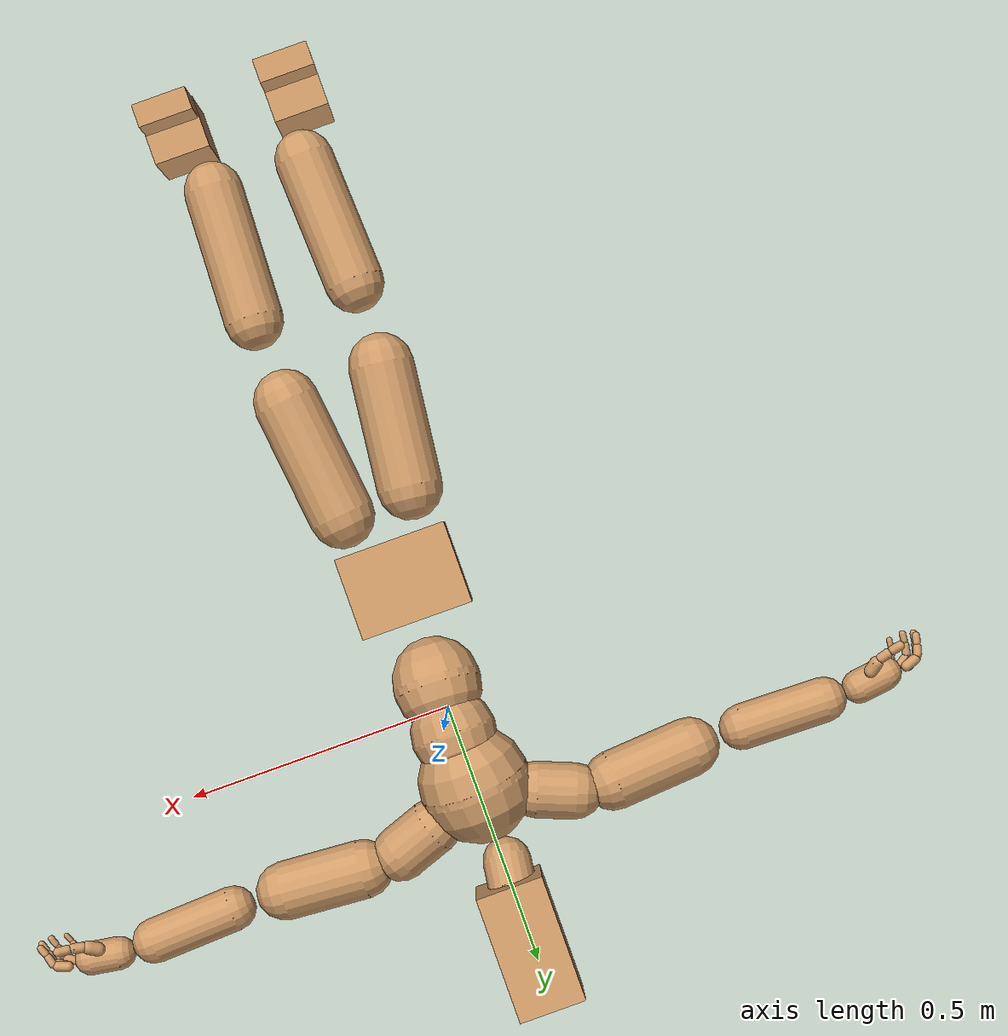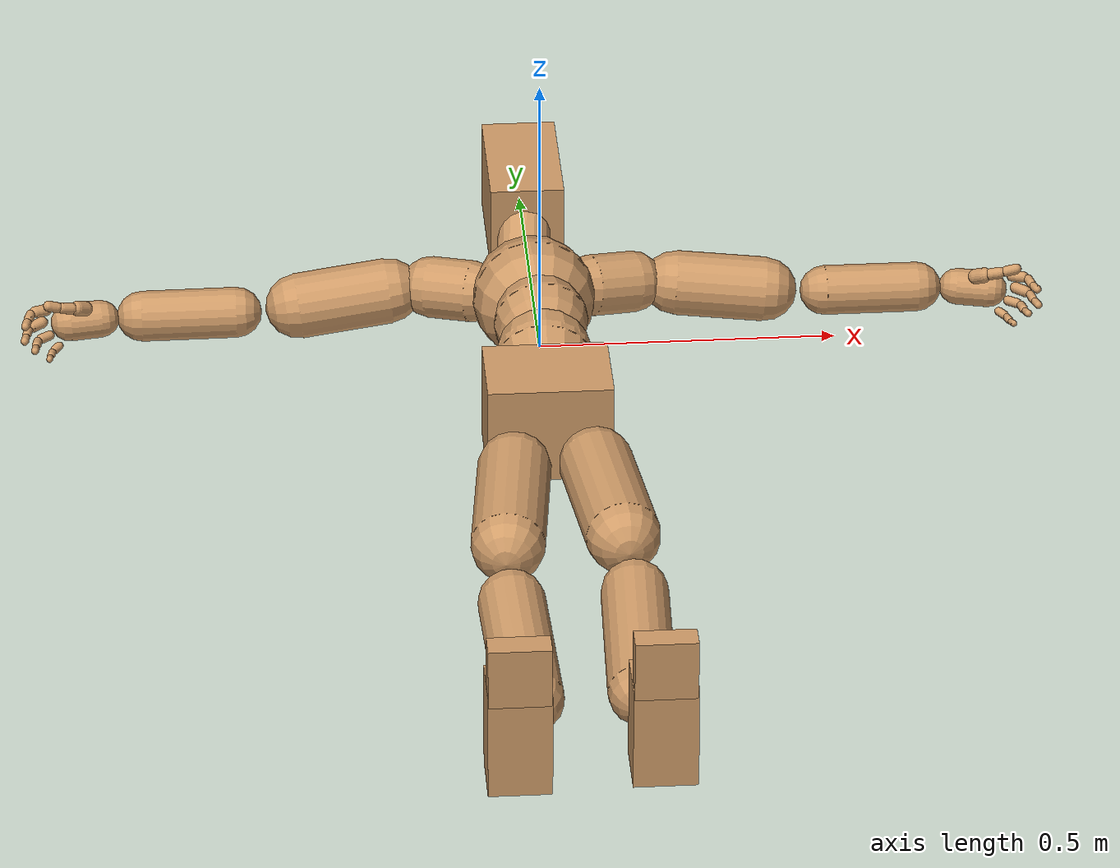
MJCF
<mujoco model="humanoid">
  <compiler coordinate="local"/>
  <default>
    <joint damping="0.0" armature="0.01" stiffness="0.0" limited="true"/>
    <geom conaffinity="1" condim="3" contype="7" margin="0.001" rgba="0.8 0.6 .4 1"/>
  </default>
  <asset>
    <texture type="skybox" builtin="gradient" rgb1=".4 .5 .6" rgb2="0 0 0" width="100" height="100"/>
    <texture builtin="flat" height="1278" mark="cross" markrgb="1 1 1" name="texgeom" random="0.01" rgb1="0.8 0.6 0.4" rgb2="0.8 0.6 0.4" type="cube" width="127"/>
    <texture builtin="checker" height="100" name="texplane" rgb1="0 0 0" rgb2="0.8 0.8 0.8" type="2d" width="100"/>
    <material name="MatPlane" reflectance="0.5" shininess="1" specular="1" texrepeat="60 60" texture="texplane"/>
    <material name="geom" texture="texgeom" texuniform="true"/>
  </asset>
  <worldbody>
    <body name="Pelvis" pos="-0.0022 -0.2408 0.0286">
      <geom type="box" density="3181.709383" pos="-0.0024 -0.0084 -0.0055" size="0.105 0.0771 0.085" quat="1.0000 0.0000 0.0000 0.0000" name="Pelvis"/>
      <body name="L_Hip" pos="0.0586 -0.0823 -0.0177">
        <joint name="L_Hip_x" type="hinge" pos="0 0 0" axis="1 0 0" stiffness="800" damping="80" armature="0.02" range="-180.0000 180.0000"/>
        <joint name="L_Hip_y" type="hinge" pos="0 0 0" axis="0 1 0" stiffness="800" damping="80" armature="0.02" range="-180.0000 180.0000"/>
        <joint name="L_Hip_z" type="hinge" pos="0 0 0" axis="0 0 1" stiffness="800" damping="80" armature="0.02" range="-180.0000 180.0000"/>
        <geom type="capsule" contype="1" conaffinity="1" density="2040.816327" fromto="0.0087 -0.0773 0.0016 0.0348 -0.3092 0.0064" size="0.062" name="L_Hip"/>
        <body name="L_Knee" pos="0.0435 -0.3865 0.008">
          <joint name="L_Knee_x" type="hinge" pos="0 0 0" axis="1 0 0" stiffness="800" damping="80" armature="0.02" range="-180.0000 180.0000"/>
          <joint name="L_Knee_y" type="hinge" pos="0 0 0" axis="0 1 0" stiffness="800" damping="80" armature="0.02" range="-180.0000 180.0000"/>
          <joint name="L_Knee_z" type="hinge" pos="0 0 0" axis="0 0 1" stiffness="800" damping="80" armature="0.02" range="-180.0000 180.0000"/>
          <geom type="capsule" contype="1" conaffinity="1" density="1234.567901" fromto="-0.0030 -0.0854 -0.0075 -0.0118 -0.3415 -0.0299" size="0.0552" name="L_Knee"/>
          <body name="L_Ankle" pos="-0.0148 -0.4269 -0.0374">
            <joint name="L_Ankle_x" type="hinge" pos="0 0 0" axis="1 0 0" stiffness="800" damping="80" armature="0.02" range="-180.0000 180.0000"/>
            <joint name="L_Ankle_y" type="hinge" pos="0 0 0" axis="0 1 0" stiffness="800" damping="80" armature="0.02" range="-180.0000 180.0000"/>
            <joint name="L_Ankle_z" type="hinge" pos="0 0 0" axis="0 0 1" stiffness="800" damping="80" armature="0.02" range="-180.0000 180.0000"/>
            <geom type="box" density="450.56405" pos="0.0280 -0.0243 0.0215" size="0.0519 0.0482 0.0887" quat="1.0000 0.0000 0.0000 0.0000" name="L_Ankle"/>
            <body name="L_Toe" pos="0.0408 -0.0604 0.122">
              <joint name="L_Toe_x" type="hinge" pos="0 0 0" axis="1 0 0" stiffness="500" damping="50" armature="0.02" range="-180.0000 180.0000"/>
              <joint name="L_Toe_y" type="hinge" pos="0 0 0" axis="0 1 0" stiffness="500" damping="50" armature="0.02" range="-180.0000 180.0000"/>
              <joint name="L_Toe_z" type="hinge" pos="0 0 0" axis="0 0 1" stiffness="500" damping="50" armature="0.02" range="-180.0000 180.0000"/>
              <geom type="box" density="427.62749" pos="-0.0127 0.0089 0.0254" size="0.0502 0.021 0.0515" quat="1.0000 0.0000 0.0000 0.0000" name="L_Toe"/>
            </body>
          </body>
        </body>
      </body>
      <body name="R_Hip" pos="-0.0603 -0.0905 -0.0135">
        <joint name="R_Hip_x" type="hinge" pos="0 0 0" axis="1 0 0" stiffness="800" damping="80" armature="0.02" range="-180.0000 180.0000"/>
        <joint name="R_Hip_y" type="hinge" pos="0 0 0" axis="0 1 0" stiffness="800" damping="80" armature="0.02" range="-180.0000 180.0000"/>
        <joint name="R_Hip_z" type="hinge" pos="0 0 0" axis="0 0 1" stiffness="800" damping="80" armature="0.02" range="-180.0000 180.0000"/>
        <geom type="capsule" contype="1" conaffinity="1" density="2040.816327" fromto="-0.0087 -0.0767 -0.0010 -0.0346 -0.3070 -0.0039" size="0.0615" name="R_Hip"/>
        <body name="R_Knee" pos="-0.0433 -0.3837 -0.0048">
          <joint name="R_Knee_x" type="hinge" pos="0 0 0" axis="1 0 0" stiffness="800" damping="80" armature="0.02" range="-180.0000 180.0000"/>
          <joint name="R_Knee_y" type="hinge" pos="0 0 0" axis="0 1 0" stiffness="800" damping="80" armature="0.02" range="-180.0000 180.0000"/>
          <joint name="R_Knee_z" type="hinge" pos="0 0 0" axis="0 0 1" stiffness="800" damping="80" armature="0.02" range="-180.0000 180.0000"/>
          <geom type="capsule" contype="1" conaffinity="1" density="1234.567901" fromto="0.0038 -0.0840 -0.0069 0.0153 -0.3360 -0.0276" size="0.0554" name="R_Knee"/>
          <body name="R_Ankle" pos="0.0191 -0.42 -0.0345">
            <joint name="R_Ankle_x" type="hinge" pos="0 0 0" axis="1 0 0" stiffness="800" damping="80" armature="0.02" range="-180.0000 180.0000"/>
            <joint name="R_Ankle_y" type="hinge" pos="0 0 0" axis="0 1 0" stiffness="800" damping="80" armature="0.02" range="-180.0000 180.0000"/>
            <joint name="R_Ankle_z" type="hinge" pos="0 0 0" axis="0 0 1" stiffness="800" damping="80" armature="0.02" range="-180.0000 180.0000"/>
            <geom type="box" density="438.237554" pos="-0.0302 -0.0275 0.0249" size="0.0511 0.0503 0.0908" quat="1.0000 0.0000 0.0000 0.0000" name="R_Ankle"/>
            <body name="R_Toe" pos="-0.0348 -0.062 0.1304">
              <joint name="R_Toe_x" type="hinge" pos="0 0 0" axis="1 0 0" stiffness="500" damping="50" armature="0.02" range="-180.0000 180.0000"/>
              <joint name="R_Toe_y" type="hinge" pos="0 0 0" axis="0 1 0" stiffness="500" damping="50" armature="0.02" range="-180.0000 180.0000"/>
              <joint name="R_Toe_z" type="hinge" pos="0 0 0" axis="0 0 1" stiffness="500" damping="50" armature="0.02" range="-180.0000 180.0000"/>
              <geom type="box" density="430.112994" pos="0.0046 0.0061 0.0213" size="0.0506 0.0219 0.0519" quat="1.0000 0.0000 0.0000 0.0000" name="R_Toe"/>
            </body>
          </body>
        </body>
      </body>
      <body name="Torso" pos="0.0044 0.1244 -0.0384">
        <joint name="Torso_x" type="hinge" pos="0 0 0" axis="1 0 0" stiffness="1000" damping="100" armature="0.02" range="-45.0000 45.0000"/>
        <joint name="Torso_y" type="hinge" pos="0 0 0" axis="0 1 0" stiffness="1000" damping="100" armature="0.02" range="-30.0000 30.0000"/>
        <joint name="Torso_z" type="hinge" pos="0 0 0" axis="0 0 1" stiffness="1000" damping="100" armature="0.02" range="-30.0000 30.0000"/>
        <geom type="capsule" contype="1" conaffinity="1" density="2040.816327" fromto="0.0020 0.0621 0.0121 0.0025 0.0759 0.0148" size="0.0826" name="Torso"/>
        <body name="Spine" pos="0.0045 0.138 0.0268">
          <joint name="Spine_x" type="hinge" pos="0 0 0" axis="1 0 0" stiffness="1000" damping="100" armature="0.02" range="-45.0000 45.0000"/>
          <joint name="Spine_y" type="hinge" pos="0 0 0" axis="0 1 0" stiffness="1000" damping="100" armature="0.02" range="-30.0000 30.0000"/>
          <joint name="Spine_z" type="hinge" pos="0 0 0" axis="0 0 1" stiffness="1000" damping="100" armature="0.02" range="-30.0000 30.0000"/>
          <geom type="capsule" contype="1" conaffinity="1" density="2040.816327" fromto="-0.0010 0.0252 0.0013 -0.0012 0.0308 0.0016" size="0.0803" name="Spine"/>
          <body name="Chest" pos="-0.0023 0.056 0.0029">
            <joint name="Chest_x" type="hinge" pos="0 0 0" axis="1 0 0" stiffness="1000" damping="100" armature="0.02" range="-45.0000 45.0000"/>
            <joint name="Chest_y" type="hinge" pos="0 0 0" axis="0 1 0" stiffness="1000" damping="100" armature="0.02" range="-30.0000 30.0000"/>
            <joint name="Chest_z" type="hinge" pos="0 0 0" axis="0 0 1" stiffness="1000" damping="100" armature="0.02" range="-30.0000 30.0000"/>
            <geom type="capsule" contype="1" conaffinity="1" density="2040.816327" fromto="-0.0037 0.0657 -0.0114 -0.0045 0.0803 -0.0139" size="0.1044" name="Chest"/>
            <body name="Neck" pos="-0.0134 0.2116 -0.0335">
              <joint name="Neck_x" type="hinge" pos="0 0 0" axis="1 0 0" stiffness="500" damping="50" armature="0.02" range="-180.0000 180.0000"/>
              <joint name="Neck_y" type="hinge" pos="0 0 0" axis="0 1 0" stiffness="500" damping="50" armature="0.02" range="-180.0000 180.0000"/>
              <joint name="Neck_z" type="hinge" pos="0 0 0" axis="0 0 1" stiffness="500" damping="50" armature="0.02" range="-180.0000 180.0000"/>
              <geom type="capsule" contype="1" conaffinity="1" density="1000" fromto="0.0020 0.0178 0.0101 0.0081 0.0712 0.0403" size="0.0455" name="Neck"/>
              <body name="Head" pos="0.0101 0.0889 0.0504">
                <joint name="Head_x" type="hinge" pos="0 0 0" axis="1 0 0" stiffness="500" damping="50" armature="0.02" range="-180.0000 180.0000"/>
                <joint name="Head_y" type="hinge" pos="0 0 0" axis="0 1 0" stiffness="500" damping="50" armature="0.02" range="-180.0000 180.0000"/>
                <joint name="Head_z" type="hinge" pos="0 0 0" axis="0 0 1" stiffness="500" damping="50" armature="0.02" range="-180.0000 180.0000"/>
                <geom type="box" density="1015.616416" pos="0.0014 0.0808 -0.0085" size="0.0634 0.1189 0.079" quat="1.0000 0.0000 0.0000 0.0000" name="Head"/>
              </body>
            </body>
            <body name="L_Thorax" pos="0.0717 0.114 -0.0189">
              <joint name="L_Thorax_x" type="hinge" pos="0 0 0" axis="1 0 0" stiffness="500" damping="50" armature="0.02" range="-45.0000 45.0000"/>
              <joint name="L_Thorax_y" type="hinge" pos="0 0 0" axis="0 1 0" stiffness="500" damping="50" armature="0.02" range="-30.0000 30.0000"/>
              <joint name="L_Thorax_z" type="hinge" pos="0 0 0" axis="0 0 1" stiffness="500" damping="50" armature="0.02" range="-30.0000 30.0000"/>
              <geom type="capsule" contype="1" conaffinity="1" density="1000" fromto="0.0246 0.0090 -0.0038 0.0983 0.0362 -0.0152" size="0.053" name="L_Thorax"/>
              <body name="L_Shoulder" pos="0.1229 0.0452 -0.019">
                <joint name="L_Shoulder_x" type="hinge" pos="0 0 0" axis="1 0 0" stiffness="500" damping="50" armature="0.02" range="-90.0000 90.0000"/>
                <joint name="L_Shoulder_y" type="hinge" pos="0 0 0" axis="0 1 0" stiffness="500" damping="50" armature="0.02" range="-90.0000 90.0000"/>
                <joint name="L_Shoulder_z" type="hinge" pos="0 0 0" axis="0 0 1" stiffness="500" damping="50" armature="0.02" range="-90.0000 90.0000"/>
                <geom type="capsule" contype="1" conaffinity="1" density="1000" fromto="0.0511 -0.0031 -0.0046 0.2043 -0.0125 -0.0184" size="0.0553" name="L_Shoulder"/>
                <body name="L_Elbow" pos="0.2553 -0.0156 -0.0229">
                  <joint name="L_Elbow_x" type="hinge" pos="0 0 0" axis="1 0 0" stiffness="500" damping="50" armature="0.02" range="0.0000 135.0000"/>
                  <joint name="L_Elbow_y" type="hinge" pos="0 0 0" axis="0 1 0" stiffness="500" damping="50" armature="0.02" range="-45.0000 45.0000"/>
                  <joint name="L_Elbow_z" type="hinge" pos="0 0 0" axis="0 0 1" stiffness="500" damping="50" armature="0.02" range="-45.0000 45.0000"/>
                  <geom type="capsule" contype="1" conaffinity="1" density="1000" fromto="0.0531 0.0025 -0.0015 0.2126 0.0102 -0.0059" size="0.0427" name="L_Elbow"/>
                  <body name="L_Wrist" pos="0.2657 0.0127 -0.0074">
                    <joint name="L_Wrist_x" type="hinge" pos="0 0 0" axis="1 0 0" stiffness="300" damping="30" armature="0.02" range="-90.0000 90.0000"/>
                    <joint name="L_Wrist_y" type="hinge" pos="0 0 0" axis="0 1 0" stiffness="300" damping="30" armature="0.02" range="-90.0000 90.0000"/>
                    <joint name="L_Wrist_z" type="hinge" pos="0 0 0" axis="0 0 1" stiffness="300" damping="30" armature="0.02" range="-90.0000 90.0000"/>
                    <geom type="capsule" contype="1" conaffinity="1" density="1000" fromto="0.0180 -0.0027 -0.0009 0.0721 -0.0108 -0.0036" size="0.0312" name="L_Wrist"/>
                    <body name="L_Index1" pos="0.1057 -0.0113 0.0221">
                      <joint name="L_Index1_x" type="hinge" pos="0 0 0" axis="1 0 0" stiffness="100" damping="10" armature="0.02" range="-180.0000 180.0000"/>
                      <joint name="L_Index1_y" type="hinge" pos="0 0 0" axis="0 1 0" stiffness="100" damping="10" armature="0.02" range="-180.0000 180.0000"/>
                      <joint name="L_Index1_z" type="hinge" pos="0 0 0" axis="0 0 1" stiffness="100" damping="10" armature="0.02" range="-180.0000 180.0000"/>
                      <geom type="capsule" contype="1" conaffinity="1" density="1000" fromto="0.0062 -0.0024 0.0004 0.0247 -0.0097 0.0015" size="0.0096" name="L_Index1"/>
                      <body name="L_Index2" pos="0.0309 -0.0122 0.0019">
                        <joint name="L_Index2_x" type="hinge" pos="0 0 0" axis="1 0 0" stiffness="100" damping="10" armature="0.02" range="-180.0000 180.0000"/>
                        <joint name="L_Index2_y" type="hinge" pos="0 0 0" axis="0 1 0" stiffness="100" damping="10" armature="0.02" range="-180.0000 180.0000"/>
                        <joint name="L_Index2_z" type="hinge" pos="0 0 0" axis="0 0 1" stiffness="100" damping="10" armature="0.02" range="-180.0000 180.0000"/>
                        <geom type="capsule" contype="1" conaffinity="1" density="1000" fromto="0.0013 -0.0045 -0.0004 0.0050 -0.0180 -0.0014" size="0.0077" name="L_Index2"/>
                        <body name="L_Index3" pos="0.0063 -0.0225 -0.0018">
                          <joint name="L_Index3_x" type="hinge" pos="0 0 0" axis="1 0 0" stiffness="100" damping="10" armature="0.02" range="-180.0000 180.0000"/>
                          <joint name="L_Index3_y" type="hinge" pos="0 0 0" axis="0 1 0" stiffness="100" damping="10" armature="0.02" range="-180.0000 180.0000"/>
                          <joint name="L_Index3_z" type="hinge" pos="0 0 0" axis="0 0 1" stiffness="100" damping="10" armature="0.02" range="-180.0000 180.0000"/>
                          <geom type="capsule" contype="1" conaffinity="1" density="1000" fromto="0.0017 -0.0041 0.0000 0.0066 -0.0164 0.0002" size="0.007" name="L_Index3"/>
                        </body>
                      </body>
                    </body>
                    <body name="L_Middle1" pos="0.1137 -0.0081 -0.0021">
                      <joint name="L_Middle1_x" type="hinge" pos="0 0 0" axis="1 0 0" stiffness="100" damping="10" armature="0.02" range="-180.0000 180.0000"/>
                      <joint name="L_Middle1_y" type="hinge" pos="0 0 0" axis="0 1 0" stiffness="100" damping="10" armature="0.02" range="-180.0000 180.0000"/>
                      <joint name="L_Middle1_z" type="hinge" pos="0 0 0" axis="0 0 1" stiffness="100" damping="10" armature="0.02" range="-180.0000 180.0000"/>
                      <geom type="capsule" contype="1" conaffinity="1" density="1000" fromto="0.0055 -0.0032 -0.0009 0.0219 -0.0129 -0.0034" size="0.0097" name="L_Middle1"/>
                      <body name="L_Middle2" pos="0.0274 -0.0162 -0.0043">
                        <joint name="L_Middle2_x" type="hinge" pos="0 0 0" axis="1 0 0" stiffness="100" damping="10" armature="0.02" range="-180.0000 180.0000"/>
                        <joint name="L_Middle2_y" type="hinge" pos="0 0 0" axis="0 1 0" stiffness="100" damping="10" armature="0.02" range="-180.0000 180.0000"/>
                        <joint name="L_Middle2_z" type="hinge" pos="0 0 0" axis="0 0 1" stiffness="100" damping="10" armature="0.02" range="-180.0000 180.0000"/>
                        <geom type="capsule" contype="1" conaffinity="1" density="1000" fromto="0.0010 -0.0048 -0.0002 0.0042 -0.0194 -0.0008" size="0.0073" name="L_Middle2"/>
                        <body name="L_Middle3" pos="0.0052 -0.0242 -0.001">
                          <joint name="L_Middle3_x" type="hinge" pos="0 0 0" axis="1 0 0" stiffness="100" damping="10" armature="0.02" range="-180.0000 180.0000"/>
                          <joint name="L_Middle3_y" type="hinge" pos="0 0 0" axis="0 1 0" stiffness="100" damping="10" armature="0.02" range="-180.0000 180.0000"/>
                          <joint name="L_Middle3_z" type="hinge" pos="0 0 0" axis="0 0 1" stiffness="100" damping="10" armature="0.02" range="-180.0000 180.0000"/>
                          <geom type="capsule" contype="1" conaffinity="1" density="1000" fromto="0.0014 -0.0044 0.0002 0.0058 -0.0178 0.0008" size="0.0066" name="L_Middle3"/>
                        </body>
                      </body>
                    </body>
                    <body name="L_Pinky1" pos="0.0876 -0.015 -0.0445">
                      <joint name="L_Pinky1_x" type="hinge" pos="0 0 0" axis="1 0 0" stiffness="100" damping="10" armature="0.02" range="-180.0000 180.0000"/>
                      <joint name="L_Pinky1_y" type="hinge" pos="0 0 0" axis="0 1 0" stiffness="100" damping="10" armature="0.02" range="-180.0000 180.0000"/>
                      <joint name="L_Pinky1_z" type="hinge" pos="0 0 0" axis="0 0 1" stiffness="100" damping="10" armature="0.02" range="-180.0000 180.0000"/>
                      <geom type="capsule" contype="1" conaffinity="1" density="1000" fromto="0.0028 -0.0029 -0.0009 0.0112 -0.0114 -0.0035" size="0.0073" name="L_Pinky1"/>
                      <body name="L_Pinky2" pos="0.014 -0.0143 -0.0044">
                        <joint name="L_Pinky2_x" type="hinge" pos="0 0 0" axis="1 0 0" stiffness="100" damping="10" armature="0.02" range="-180.0000 180.0000"/>
                        <joint name="L_Pinky2_y" type="hinge" pos="0 0 0" axis="0 1 0" stiffness="100" damping="10" armature="0.02" range="-180.0000 180.0000"/>
                        <joint name="L_Pinky2_z" type="hinge" pos="0 0 0" axis="0 0 1" stiffness="100" damping="10" armature="0.02" range="-180.0000 180.0000"/>
                        <geom type="capsule" contype="1" conaffinity="1" density="1000" fromto="0.0009 -0.0038 0.0003 0.0037 -0.0154 0.0014" size="0.0065" name="L_Pinky2"/>
                        <body name="L_Pinky3" pos="0.0046 -0.0192 0.0017">
                          <joint name="L_Pinky3_x" type="hinge" pos="0 0 0" axis="1 0 0" stiffness="100" damping="10" armature="0.02" range="-180.0000 180.0000"/>
                          <joint name="L_Pinky3_y" type="hinge" pos="0 0 0" axis="0 1 0" stiffness="100" damping="10" armature="0.02" range="-180.0000 180.0000"/>
                          <joint name="L_Pinky3_z" type="hinge" pos="0 0 0" axis="0 0 1" stiffness="100" damping="10" armature="0.02" range="-180.0000 180.0000"/>
                          <geom type="capsule" contype="1" conaffinity="1" density="1000" fromto="0.0013 -0.0034 0.0007 0.0053 -0.0138 0.0030" size="0.0053" name="L_Pinky3"/>
                        </body>
                      </body>
                    </body>
                    <body name="L_Ring1" pos="0.1014 -0.0102 -0.0267">
                      <joint name="L_Ring1_x" type="hinge" pos="0 0 0" axis="1 0 0" stiffness="100" damping="10" armature="0.02" range="-180.0000 180.0000"/>
                      <joint name="L_Ring1_y" type="hinge" pos="0 0 0" axis="0 1 0" stiffness="100" damping="10" armature="0.02" range="-180.0000 180.0000"/>
                      <joint name="L_Ring1_z" type="hinge" pos="0 0 0" axis="0 0 1" stiffness="100" damping="10" armature="0.02" range="-180.0000 180.0000"/>
                      <geom type="capsule" contype="1" conaffinity="1" density="1000" fromto="0.0049 -0.0034 -0.0000 0.0195 -0.0136 -0.0001" size="0.0082" name="L_Ring1"/>
                      <body name="L_Ring2" pos="0.0244 -0.017 -0.0001">
                        <joint name="L_Ring2_x" type="hinge" pos="0 0 0" axis="1 0 0" stiffness="100" damping="10" armature="0.02" range="-180.0000 180.0000"/>
                        <joint name="L_Ring2_y" type="hinge" pos="0 0 0" axis="0 1 0" stiffness="100" damping="10" armature="0.02" range="-180.0000 180.0000"/>
                        <joint name="L_Ring2_z" type="hinge" pos="0 0 0" axis="0 0 1" stiffness="100" damping="10" armature="0.02" range="-180.0000 180.0000"/>
                        <geom type="capsule" contype="1" conaffinity="1" density="1000" fromto="0.0008 -0.0048 0.0004 0.0034 -0.0194 0.0018" size="0.0075" name="L_Ring2"/>
                        <body name="L_Ring3" pos="0.0042 -0.0242 0.0022">
                          <joint name="L_Ring3_x" type="hinge" pos="0 0 0" axis="1 0 0" stiffness="100" damping="10" armature="0.02" range="-180.0000 180.0000"/>
                          <joint name="L_Ring3_y" type="hinge" pos="0 0 0" axis="0 1 0" stiffness="100" damping="10" armature="0.02" range="-180.0000 180.0000"/>
                          <joint name="L_Ring3_z" type="hinge" pos="0 0 0" axis="0 0 1" stiffness="100" damping="10" armature="0.02" range="-180.0000 180.0000"/>
                          <geom type="capsule" contype="1" conaffinity="1" density="1000" fromto="0.0012 -0.0044 0.0008 0.0050 -0.0178 0.0034" size="0.0061" name="L_Ring3"/>
                        </body>
                      </body>
                    </body>
                    <body name="L_Thumb1" pos="0.0422 -0.0231 0.0288">
                      <joint name="L_Thumb1_x" type="hinge" pos="0 0 0" axis="1 0 0" stiffness="100" damping="10" armature="0.02" range="-180.0000 180.0000"/>
                      <joint name="L_Thumb1_y" type="hinge" pos="0 0 0" axis="0 1 0" stiffness="100" damping="10" armature="0.02" range="-180.0000 180.0000"/>
                      <joint name="L_Thumb1_z" type="hinge" pos="0 0 0" axis="0 0 1" stiffness="100" damping="10" armature="0.02" range="-180.0000 180.0000"/>
                      <geom type="capsule" contype="1" conaffinity="1" density="1000" fromto="0.0047 -0.0034 0.0027 0.0188 -0.0135 0.0108" size="0.013" name="L_Thumb1"/>
                      <body name="L_Thumb2" pos="0.0235 -0.0169 0.0135">
                        <joint name="L_Thumb2_x" type="hinge" pos="0 0 0" axis="1 0 0" stiffness="100" damping="10" armature="0.02" range="-180.0000 180.0000"/>
                        <joint name="L_Thumb2_y" type="hinge" pos="0 0 0" axis="0 1 0" stiffness="100" damping="10" armature="0.02" range="-180.0000 180.0000"/>
                        <joint name="L_Thumb2_z" type="hinge" pos="0 0 0" axis="0 0 1" stiffness="100" damping="10" armature="0.02" range="-180.0000 180.0000"/>
                        <geom type="capsule" contype="1" conaffinity="1" density="1000" fromto="0.0051 -0.0012 0.0015 0.0206 -0.0048 0.0059" size="0.0098" name="L_Thumb2"/>
                        <body name="L_Thumb3" pos="0.0257 -0.0059 0.0073">
                          <joint name="L_Thumb3_x" type="hinge" pos="0 0 0" axis="1 0 0" stiffness="100" damping="10" armature="0.02" range="-180.0000 180.0000"/>
                          <joint name="L_Thumb3_y" type="hinge" pos="0 0 0" axis="0 1 0" stiffness="100" damping="10" armature="0.02" range="-180.0000 180.0000"/>
                          <joint name="L_Thumb3_z" type="hinge" pos="0 0 0" axis="0 0 1" stiffness="100" damping="10" armature="0.02" range="-180.0000 180.0000"/>
                          <geom type="capsule" contype="1" conaffinity="1" density="1000" fromto="0.0055 -0.0008 0.0019 0.0222 -0.0032 0.0075" size="0.0089" name="L_Thumb3"/>
                        </body>
                      </body>
                    </body>
                  </body>
                </body>
              </body>
            </body>
            <body name="R_Thorax" pos="-0.083 0.1125 -0.0237">
              <joint name="R_Thorax_x" type="hinge" pos="0 0 0" axis="1 0 0" stiffness="500" damping="50" armature="0.02" range="-45.0000 45.0000"/>
              <joint name="R_Thorax_y" type="hinge" pos="0 0 0" axis="0 1 0" stiffness="500" damping="50" armature="0.02" range="-30.0000 30.0000"/>
              <joint name="R_Thorax_z" type="hinge" pos="0 0 0" axis="0 0 1" stiffness="500" damping="50" armature="0.02" range="-30.0000 30.0000"/>
              <geom type="capsule" contype="1" conaffinity="1" density="1000" fromto="-0.0226 0.0094 -0.0017 -0.0906 0.0375 -0.0068" size="0.0531" name="R_Thorax"/>
              <body name="R_Shoulder" pos="-0.1132 0.0469 -0.0085">
                <joint name="R_Shoulder_x" type="hinge" pos="0 0 0" axis="1 0 0" stiffness="500" damping="50" armature="0.02" range="-90.0000 90.0000"/>
                <joint name="R_Shoulder_y" type="hinge" pos="0 0 0" axis="0 1 0" stiffness="500" damping="50" armature="0.02" range="-90.0000 90.0000"/>
                <joint name="R_Shoulder_z" type="hinge" pos="0 0 0" axis="0 0 1" stiffness="500" damping="50" armature="0.02" range="-90.0000 90.0000"/>
                <geom type="capsule" contype="1" conaffinity="1" density="1000" fromto="-0.0520 -0.0029 -0.0063 -0.2081 -0.0115 -0.0250" size="0.056" name="R_Shoulder"/>
                <body name="R_Elbow" pos="-0.2601 -0.0144 -0.0313">
                  <joint name="R_Elbow_x" type="hinge" pos="0 0 0" axis="1 0 0" stiffness="500" damping="50" armature="0.02" range="0.0000 135.0000"/>
                  <joint name="R_Elbow_y" type="hinge" pos="0 0 0" axis="0 1 0" stiffness="500" damping="50" armature="0.02" range="-45.0000 45.0000"/>
                  <joint name="R_Elbow_z" type="hinge" pos="0 0 0" axis="0 0 1" stiffness="500" damping="50" armature="0.02" range="-45.0000 45.0000"/>
                  <geom type="capsule" contype="1" conaffinity="1" density="1000" fromto="-0.0538 0.0014 -0.0012 -0.2153 0.0054 -0.0048" size="0.0434" name="R_Elbow"/>
                  <body name="R_Wrist" pos="-0.2691 0.0068 -0.006">
                    <joint name="R_Wrist_x" type="hinge" pos="0 0 0" axis="1 0 0" stiffness="300" damping="30" armature="0.02" range="-90.0000 90.0000"/>
                    <joint name="R_Wrist_y" type="hinge" pos="0 0 0" axis="0 1 0" stiffness="300" damping="30" armature="0.02" range="-90.0000 90.0000"/>
                    <joint name="R_Wrist_z" type="hinge" pos="0 0 0" axis="0 0 1" stiffness="300" damping="30" armature="0.02" range="-90.0000 90.0000"/>
                    <geom type="capsule" contype="1" conaffinity="1" density="1000" fromto="-0.0178 -0.0023 -0.0003 -0.0712 -0.0091 -0.0013" size="0.032" name="R_Wrist"/>
                    <body name="R_Index1" pos="-0.104 -0.0089 0.0262">
                      <joint name="R_Index1_x" type="hinge" pos="0 0 0" axis="1 0 0" stiffness="100" damping="10" armature="0.02" range="-180.0000 180.0000"/>
                      <joint name="R_Index1_y" type="hinge" pos="0 0 0" axis="0 1 0" stiffness="100" damping="10" armature="0.02" range="-180.0000 180.0000"/>
                      <joint name="R_Index1_z" type="hinge" pos="0 0 0" axis="0 0 1" stiffness="100" damping="10" armature="0.02" range="-180.0000 180.0000"/>
                      <geom type="capsule" contype="1" conaffinity="1" density="1000" fromto="-0.0064 -0.0023 0.0001 -0.0255 -0.0091 0.0005" size="0.0099" name="R_Index1"/>
                      <body name="R_Index2" pos="-0.0318 -0.0114 0.0006">
                        <joint name="R_Index2_x" type="hinge" pos="0 0 0" axis="1 0 0" stiffness="100" damping="10" armature="0.02" range="-180.0000 180.0000"/>
                        <joint name="R_Index2_y" type="hinge" pos="0 0 0" axis="0 1 0" stiffness="100" damping="10" armature="0.02" range="-180.0000 180.0000"/>
                        <joint name="R_Index2_z" type="hinge" pos="0 0 0" axis="0 0 1" stiffness="100" damping="10" armature="0.02" range="-180.0000 180.0000"/>
                        <geom type="capsule" contype="1" conaffinity="1" density="1000" fromto="-0.0014 -0.0044 -0.0006 -0.0055 -0.0177 -0.0024" size="0.0081" name="R_Index2"/>
                        <body name="R_Index3" pos="-0.0069 -0.0222 -0.003">
                          <joint name="R_Index3_x" type="hinge" pos="0 0 0" axis="1 0 0" stiffness="100" damping="10" armature="0.02" range="-180.0000 180.0000"/>
                          <joint name="R_Index3_y" type="hinge" pos="0 0 0" axis="0 1 0" stiffness="100" damping="10" armature="0.02" range="-180.0000 180.0000"/>
                          <joint name="R_Index3_z" type="hinge" pos="0 0 0" axis="0 0 1" stiffness="100" damping="10" armature="0.02" range="-180.0000 180.0000"/>
                          <geom type="capsule" contype="1" conaffinity="1" density="1000" fromto="-0.0010 -0.0040 -0.0002 -0.0039 -0.0161 -0.0008" size="0.0072" name="R_Index3"/>
                        </body>
                      </body>
                    </body>
                    <body name="R_Middle1" pos="-0.1126 -0.005 0.0008">
                      <joint name="R_Middle1_x" type="hinge" pos="0 0 0" axis="1 0 0" stiffness="100" damping="10" armature="0.02" range="-180.0000 180.0000"/>
                      <joint name="R_Middle1_y" type="hinge" pos="0 0 0" axis="0 1 0" stiffness="100" damping="10" armature="0.02" range="-180.0000 180.0000"/>
                      <joint name="R_Middle1_z" type="hinge" pos="0 0 0" axis="0 0 1" stiffness="100" damping="10" armature="0.02" range="-180.0000 180.0000"/>
                      <geom type="capsule" contype="1" conaffinity="1" density="1000" fromto="-0.0056 -0.0030 -0.0009 -0.0223 -0.0122 -0.0037" size="0.01" name="R_Middle1"/>
                      <body name="R_Middle2" pos="-0.0278 -0.0152 -0.0046">
                        <joint name="R_Middle2_x" type="hinge" pos="0 0 0" axis="1 0 0" stiffness="100" damping="10" armature="0.02" range="-180.0000 180.0000"/>
                        <joint name="R_Middle2_y" type="hinge" pos="0 0 0" axis="0 1 0" stiffness="100" damping="10" armature="0.02" range="-180.0000 180.0000"/>
                        <joint name="R_Middle2_z" type="hinge" pos="0 0 0" axis="0 0 1" stiffness="100" damping="10" armature="0.02" range="-180.0000 180.0000"/>
                        <geom type="capsule" contype="1" conaffinity="1" density="1000" fromto="-0.0011 -0.0048 -0.0003 -0.0044 -0.0190 -0.0012" size="0.0075" name="R_Middle2"/>
                        <body name="R_Middle3" pos="-0.0055 -0.0238 -0.0015">
                          <joint name="R_Middle3_x" type="hinge" pos="0 0 0" axis="1 0 0" stiffness="100" damping="10" armature="0.02" range="-180.0000 180.0000"/>
                          <joint name="R_Middle3_y" type="hinge" pos="0 0 0" axis="0 1 0" stiffness="100" damping="10" armature="0.02" range="-180.0000 180.0000"/>
                          <joint name="R_Middle3_z" type="hinge" pos="0 0 0" axis="0 0 1" stiffness="100" damping="10" armature="0.02" range="-180.0000 180.0000"/>
                          <geom type="capsule" contype="1" conaffinity="1" density="1000" fromto="-0.0007 -0.0044 0.0001 -0.0028 -0.0174 0.0004" size="0.0068" name="R_Middle3"/>
                        </body>
                      </body>
                    </body>
                    <body name="R_Pinky1" pos="-0.0878 -0.0135 -0.0425">
                      <joint name="R_Pinky1_x" type="hinge" pos="0 0 0" axis="1 0 0" stiffness="100" damping="10" armature="0.02" range="-180.0000 180.0000"/>
                      <joint name="R_Pinky1_y" type="hinge" pos="0 0 0" axis="0 1 0" stiffness="100" damping="10" armature="0.02" range="-180.0000 180.0000"/>
                      <joint name="R_Pinky1_z" type="hinge" pos="0 0 0" axis="0 0 1" stiffness="100" damping="10" armature="0.02" range="-180.0000 180.0000"/>
                      <geom type="capsule" contype="1" conaffinity="1" density="1000" fromto="-0.0027 -0.0029 -0.0009 -0.0108 -0.0116 -0.0037" size="0.0073" name="R_Pinky1"/>
                      <body name="R_Pinky2" pos="-0.0135 -0.0145 -0.0046">
                        <joint name="R_Pinky2_x" type="hinge" pos="0 0 0" axis="1 0 0" stiffness="100" damping="10" armature="0.02" range="-180.0000 180.0000"/>
                        <joint name="R_Pinky2_y" type="hinge" pos="0 0 0" axis="0 1 0" stiffness="100" damping="10" armature="0.02" range="-180.0000 180.0000"/>
                        <joint name="R_Pinky2_z" type="hinge" pos="0 0 0" axis="0 0 1" stiffness="100" damping="10" armature="0.02" range="-180.0000 180.0000"/>
                        <geom type="capsule" contype="1" conaffinity="1" density="1000" fromto="-0.0009 -0.0038 0.0003 -0.0035 -0.0153 0.0011" size="0.0066" name="R_Pinky2"/>
                        <body name="R_Pinky3" pos="-0.0044 -0.0191 0.0014">
                          <joint name="R_Pinky3_x" type="hinge" pos="0 0 0" axis="1 0 0" stiffness="100" damping="10" armature="0.02" range="-180.0000 180.0000"/>
                          <joint name="R_Pinky3_y" type="hinge" pos="0 0 0" axis="0 1 0" stiffness="100" damping="10" armature="0.02" range="-180.0000 180.0000"/>
                          <joint name="R_Pinky3_z" type="hinge" pos="0 0 0" axis="0 0 1" stiffness="100" damping="10" armature="0.02" range="-180.0000 180.0000"/>
                          <geom type="capsule" contype="1" conaffinity="1" density="1000" fromto="-0.0005 -0.0034 0.0007 -0.0019 -0.0137 0.0027" size="0.0054" name="R_Pinky3"/>
                        </body>
                      </body>
                    </body>
                    <body name="R_Ring1" pos="-0.1011 -0.0076 -0.0248">
                      <joint name="R_Ring1_x" type="hinge" pos="0 0 0" axis="1 0 0" stiffness="100" damping="10" armature="0.02" range="-180.0000 180.0000"/>
                      <joint name="R_Ring1_y" type="hinge" pos="0 0 0" axis="0 1 0" stiffness="100" damping="10" armature="0.02" range="-180.0000 180.0000"/>
                      <joint name="R_Ring1_z" type="hinge" pos="0 0 0" axis="0 0 1" stiffness="100" damping="10" armature="0.02" range="-180.0000 180.0000"/>
                      <geom type="capsule" contype="1" conaffinity="1" density="1000" fromto="-0.0049 -0.0032 -0.0002 -0.0198 -0.0129 -0.0010" size="0.0083" name="R_Ring1"/>
                      <body name="R_Ring2" pos="-0.0247 -0.0161 -0.0012">
                        <joint name="R_Ring2_x" type="hinge" pos="0 0 0" axis="1 0 0" stiffness="100" damping="10" armature="0.02" range="-180.0000 180.0000"/>
                        <joint name="R_Ring2_y" type="hinge" pos="0 0 0" axis="0 1 0" stiffness="100" damping="10" armature="0.02" range="-180.0000 180.0000"/>
                        <joint name="R_Ring2_z" type="hinge" pos="0 0 0" axis="0 0 1" stiffness="100" damping="10" armature="0.02" range="-180.0000 180.0000"/>
                        <geom type="capsule" contype="1" conaffinity="1" density="1000" fromto="-0.0008 -0.0048 0.0002 -0.0033 -0.0194 0.0009" size="0.0077" name="R_Ring2"/>
                        <body name="R_Ring3" pos="-0.0042 -0.0242 0.0012">
                          <joint name="R_Ring3_x" type="hinge" pos="0 0 0" axis="1 0 0" stiffness="100" damping="10" armature="0.02" range="-180.0000 180.0000"/>
                          <joint name="R_Ring3_y" type="hinge" pos="0 0 0" axis="0 1 0" stiffness="100" damping="10" armature="0.02" range="-180.0000 180.0000"/>
                          <joint name="R_Ring3_z" type="hinge" pos="0 0 0" axis="0 0 1" stiffness="100" damping="10" armature="0.02" range="-180.0000 180.0000"/>
                          <geom type="capsule" contype="1" conaffinity="1" density="1000" fromto="-0.0004 -0.0044 0.0006 -0.0017 -0.0178 0.0025" size="0.0064" name="R_Ring3"/>
                        </body>
                      </body>
                    </body>
                    <body name="R_Thumb1" pos="-0.0393 -0.0221 0.0321">
                      <joint name="R_Thumb1_x" type="hinge" pos="0 0 0" axis="1 0 0" stiffness="100" damping="10" armature="0.02" range="-180.0000 180.0000"/>
                      <joint name="R_Thumb1_y" type="hinge" pos="0 0 0" axis="0 1 0" stiffness="100" damping="10" armature="0.02" range="-180.0000 180.0000"/>
                      <joint name="R_Thumb1_z" type="hinge" pos="0 0 0" axis="0 0 1" stiffness="100" damping="10" armature="0.02" range="-180.0000 180.0000"/>
                      <geom type="capsule" contype="1" conaffinity="1" density="1000" fromto="-0.0045 -0.0038 0.0026 -0.0180 -0.0152 0.0103" size="0.0128" name="R_Thumb1"/>
                      <body name="R_Thumb2" pos="-0.0226 -0.0191 0.0129">
                        <joint name="R_Thumb2_x" type="hinge" pos="0 0 0" axis="1 0 0" stiffness="100" damping="10" armature="0.02" range="-180.0000 180.0000"/>
                        <joint name="R_Thumb2_y" type="hinge" pos="0 0 0" axis="0 1 0" stiffness="100" damping="10" armature="0.02" range="-180.0000 180.0000"/>
                        <joint name="R_Thumb2_z" type="hinge" pos="0 0 0" axis="0 0 1" stiffness="100" damping="10" armature="0.02" range="-180.0000 180.0000"/>
                        <geom type="capsule" contype="1" conaffinity="1" density="1000" fromto="-0.0051 -0.0017 0.0014 -0.0204 -0.0066 0.0057" size="0.0097" name="R_Thumb2"/>
                        <body name="R_Thumb3" pos="-0.0255 -0.0083 0.0072">
                          <joint name="R_Thumb3_x" type="hinge" pos="0 0 0" axis="1 0 0" stiffness="100" damping="10" armature="0.02" range="-180.0000 180.0000"/>
                          <joint name="R_Thumb3_y" type="hinge" pos="0 0 0" axis="0 1 0" stiffness="100" damping="10" armature="0.02" range="-180.0000 180.0000"/>
                          <joint name="R_Thumb3_z" type="hinge" pos="0 0 0" axis="0 0 1" stiffness="100" damping="10" armature="0.02" range="-180.0000 180.0000"/>
                          <geom type="capsule" contype="1" conaffinity="1" density="1000" fromto="-0.0047 -0.0013 0.0018 -0.0188 -0.0050 0.0073" size="0.0091" name="R_Thumb3"/>
                        </body>
                      </body>
                    </body>
                  </body>
                </body>
              </body>
            </body>
          </body>
        </body>
      </body>
    </body>
  </worldbody>
  <actuator>
    <motor name="L_Hip_x" joint="L_Hip_x" gear="500"/>
    <motor name="L_Hip_y" joint="L_Hip_y" gear="500"/>
    <motor name="L_Hip_z" joint="L_Hip_z" gear="500"/>
    <motor name="L_Knee_x" joint="L_Knee_x" gear="500"/>
    <motor name="L_Knee_y" joint="L_Knee_y" gear="500"/>
    <motor name="L_Knee_z" joint="L_Knee_z" gear="500"/>
    <motor name="L_Ankle_x" joint="L_Ankle_x" gear="500"/>
    <motor name="L_Ankle_y" joint="L_Ankle_y" gear="500"/>
    <motor name="L_Ankle_z" joint="L_Ankle_z" gear="500"/>
    <motor name="L_Toe_x" joint="L_Toe_x" gear="500"/>
    <motor name="L_Toe_y" joint="L_Toe_y" gear="500"/>
    <motor name="L_Toe_z" joint="L_Toe_z" gear="500"/>
    <motor name="R_Hip_x" joint="R_Hip_x" gear="500"/>
    <motor name="R_Hip_y" joint="R_Hip_y" gear="500"/>
    <motor name="R_Hip_z" joint="R_Hip_z" gear="500"/>
    <motor name="R_Knee_x" joint="R_Knee_x" gear="500"/>
    <motor name="R_Knee_y" joint="R_Knee_y" gear="500"/>
    <motor name="R_Knee_z" joint="R_Knee_z" gear="500"/>
    <motor name="R_Ankle_x" joint="R_Ankle_x" gear="500"/>
    <motor name="R_Ankle_y" joint="R_Ankle_y" gear="500"/>
    <motor name="R_Ankle_z" joint="R_Ankle_z" gear="500"/>
    <motor name="R_Toe_x" joint="R_Toe_x" gear="500"/>
    <motor name="R_Toe_y" joint="R_Toe_y" gear="500"/>
    <motor name="R_Toe_z" joint="R_Toe_z" gear="500"/>
    <motor name="Torso_x" joint="Torso_x" gear="500"/>
    <motor name="Torso_y" joint="Torso_y" gear="500"/>
    <motor name="Torso_z" joint="Torso_z" gear="500"/>
    <motor name="Spine_x" joint="Spine_x" gear="500"/>
    <motor name="Spine_y" joint="Spine_y" gear="500"/>
    <motor name="Spine_z" joint="Spine_z" gear="500"/>
    <motor name="Chest_x" joint="Chest_x" gear="500"/>
    <motor name="Chest_y" joint="Chest_y" gear="500"/>
    <motor name="Chest_z" joint="Chest_z" gear="500"/>
    <motor name="Neck_x" joint="Neck_x" gear="500"/>
    <motor name="Neck_y" joint="Neck_y" gear="500"/>
    <motor name="Neck_z" joint="Neck_z" gear="500"/>
    <motor name="Head_x" joint="Head_x" gear="500"/>
    <motor name="Head_y" joint="Head_y" gear="500"/>
    <motor name="Head_z" joint="Head_z" gear="500"/>
    <motor name="L_Thorax_x" joint="L_Thorax_x" gear="500"/>
    <motor name="L_Thorax_y" joint="L_Thorax_y" gear="500"/>
    <motor name="L_Thorax_z" joint="L_Thorax_z" gear="500"/>
    <motor name="L_Shoulder_x" joint="L_Shoulder_x" gear="500"/>
    <motor name="L_Shoulder_y" joint="L_Shoulder_y" gear="500"/>
    <motor name="L_Shoulder_z" joint="L_Shoulder_z" gear="500"/>
    <motor name="L_Elbow_x" joint="L_Elbow_x" gear="500"/>
    <motor name="L_Elbow_y" joint="L_Elbow_y" gear="500"/>
    <motor name="L_Elbow_z" joint="L_Elbow_z" gear="500"/>
    <motor name="L_Wrist_x" joint="L_Wrist_x" gear="500"/>
    <motor name="L_Wrist_y" joint="L_Wrist_y" gear="500"/>
    <motor name="L_Wrist_z" joint="L_Wrist_z" gear="500"/>
    <motor name="L_Index1_x" joint="L_Index1_x" gear="500"/>
    <motor name="L_Index1_y" joint="L_Index1_y" gear="500"/>
    <motor name="L_Index1_z" joint="L_Index1_z" gear="500"/>
    <motor name="L_Index2_x" joint="L_Index2_x" gear="500"/>
    <motor name="L_Index2_y" joint="L_Index2_y" gear="500"/>
    <motor name="L_Index2_z" joint="L_Index2_z" gear="500"/>
    <motor name="L_Index3_x" joint="L_Index3_x" gear="500"/>
    <motor name="L_Index3_y" joint="L_Index3_y" gear="500"/>
    <motor name="L_Index3_z" joint="L_Index3_z" gear="500"/>
    <motor name="L_Middle1_x" joint="L_Middle1_x" gear="500"/>
    <motor name="L_Middle1_y" joint="L_Middle1_y" gear="500"/>
    <motor name="L_Middle1_z" joint="L_Middle1_z" gear="500"/>
    <motor name="L_Middle2_x" joint="L_Middle2_x" gear="500"/>
    <motor name="L_Middle2_y" joint="L_Middle2_y" gear="500"/>
    <motor name="L_Middle2_z" joint="L_Middle2_z" gear="500"/>
    <motor name="L_Middle3_x" joint="L_Middle3_x" gear="500"/>
    <motor name="L_Middle3_y" joint="L_Middle3_y" gear="500"/>
    <motor name="L_Middle3_z" joint="L_Middle3_z" gear="500"/>
    <motor name="L_Pinky1_x" joint="L_Pinky1_x" gear="500"/>
    <motor name="L_Pinky1_y" joint="L_Pinky1_y" gear="500"/>
    <motor name="L_Pinky1_z" joint="L_Pinky1_z" gear="500"/>
    <motor name="L_Pinky2_x" joint="L_Pinky2_x" gear="500"/>
    <motor name="L_Pinky2_y" joint="L_Pinky2_y" gear="500"/>
    <motor name="L_Pinky2_z" joint="L_Pinky2_z" gear="500"/>
    <motor name="L_Pinky3_x" joint="L_Pinky3_x" gear="500"/>
    <motor name="L_Pinky3_y" joint="L_Pinky3_y" gear="500"/>
    <motor name="L_Pinky3_z" joint="L_Pinky3_z" gear="500"/>
    <motor name="L_Ring1_x" joint="L_Ring1_x" gear="500"/>
    <motor name="L_Ring1_y" joint="L_Ring1_y" gear="500"/>
    <motor name="L_Ring1_z" joint="L_Ring1_z" gear="500"/>
    <motor name="L_Ring2_x" joint="L_Ring2_x" gear="500"/>
    <motor name="L_Ring2_y" joint="L_Ring2_y" gear="500"/>
    <motor name="L_Ring2_z" joint="L_Ring2_z" gear="500"/>
    <motor name="L_Ring3_x" joint="L_Ring3_x" gear="500"/>
    <motor name="L_Ring3_y" joint="L_Ring3_y" gear="500"/>
    <motor name="L_Ring3_z" joint="L_Ring3_z" gear="500"/>
    <motor name="L_Thumb1_x" joint="L_Thumb1_x" gear="500"/>
    <motor name="L_Thumb1_y" joint="L_Thumb1_y" gear="500"/>
    <motor name="L_Thumb1_z" joint="L_Thumb1_z" gear="500"/>
    <motor name="L_Thumb2_x" joint="L_Thumb2_x" gear="500"/>
    <motor name="L_Thumb2_y" joint="L_Thumb2_y" gear="500"/>
    <motor name="L_Thumb2_z" joint="L_Thumb2_z" gear="500"/>
    <motor name="L_Thumb3_x" joint="L_Thumb3_x" gear="500"/>
    <motor name="L_Thumb3_y" joint="L_Thumb3_y" gear="500"/>
    <motor name="L_Thumb3_z" joint="L_Thumb3_z" gear="500"/>
    <motor name="R_Thorax_x" joint="R_Thorax_x" gear="500"/>
    <motor name="R_Thorax_y" joint="R_Thorax_y" gear="500"/>
    <motor name="R_Thorax_z" joint="R_Thorax_z" gear="500"/>
    <motor name="R_Shoulder_x" joint="R_Shoulder_x" gear="500"/>
    <motor name="R_Shoulder_y" joint="R_Shoulder_y" gear="500"/>
    <motor name="R_Shoulder_z" joint="R_Shoulder_z" gear="500"/>
    <motor name="R_Elbow_x" joint="R_Elbow_x" gear="500"/>
    <motor name="R_Elbow_y" joint="R_Elbow_y" gear="500"/>
    <motor name="R_Elbow_z" joint="R_Elbow_z" gear="500"/>
    <motor name="R_Wrist_x" joint="R_Wrist_x" gear="500"/>
    <motor name="R_Wrist_y" joint="R_Wrist_y" gear="500"/>
    <motor name="R_Wrist_z" joint="R_Wrist_z" gear="500"/>
    <motor name="R_Index1_x" joint="R_Index1_x" gear="500"/>
    <motor name="R_Index1_y" joint="R_Index1_y" gear="500"/>
    <motor name="R_Index1_z" joint="R_Index1_z" gear="500"/>
    <motor name="R_Index2_x" joint="R_Index2_x" gear="500"/>
    <motor name="R_Index2_y" joint="R_Index2_y" gear="500"/>
    <motor name="R_Index2_z" joint="R_Index2_z" gear="500"/>
    <motor name="R_Index3_x" joint="R_Index3_x" gear="500"/>
    <motor name="R_Index3_y" joint="R_Index3_y" gear="500"/>
    <motor name="R_Index3_z" joint="R_Index3_z" gear="500"/>
    <motor name="R_Middle1_x" joint="R_Middle1_x" gear="500"/>
    <motor name="R_Middle1_y" joint="R_Middle1_y" gear="500"/>
    <motor name="R_Middle1_z" joint="R_Middle1_z" gear="500"/>
    <motor name="R_Middle2_x" joint="R_Middle2_x" gear="500"/>
    <motor name="R_Middle2_y" joint="R_Middle2_y" gear="500"/>
    <motor name="R_Middle2_z" joint="R_Middle2_z" gear="500"/>
    <motor name="R_Middle3_x" joint="R_Middle3_x" gear="500"/>
    <motor name="R_Middle3_y" joint="R_Middle3_y" gear="500"/>
    <motor name="R_Middle3_z" joint="R_Middle3_z" gear="500"/>
    <motor name="R_Pinky1_x" joint="R_Pinky1_x" gear="500"/>
    <motor name="R_Pinky1_y" joint="R_Pinky1_y" gear="500"/>
    <motor name="R_Pinky1_z" joint="R_Pinky1_z" gear="500"/>
    <motor name="R_Pinky2_x" joint="R_Pinky2_x" gear="500"/>
    <motor name="R_Pinky2_y" joint="R_Pinky2_y" gear="500"/>
    <motor name="R_Pinky2_z" joint="R_Pinky2_z" gear="500"/>
    <motor name="R_Pinky3_x" joint="R_Pinky3_x" gear="500"/>
    <motor name="R_Pinky3_y" joint="R_Pinky3_y" gear="500"/>
    <motor name="R_Pinky3_z" joint="R_Pinky3_z" gear="500"/>
    <motor name="R_Ring1_x" joint="R_Ring1_x" gear="500"/>
    <motor name="R_Ring1_y" joint="R_Ring1_y" gear="500"/>
    <motor name="R_Ring1_z" joint="R_Ring1_z" gear="500"/>
    <motor name="R_Ring2_x" joint="R_Ring2_x" gear="500"/>
    <motor name="R_Ring2_y" joint="R_Ring2_y" gear="500"/>
    <motor name="R_Ring2_z" joint="R_Ring2_z" gear="500"/>
    <motor name="R_Ring3_x" joint="R_Ring3_x" gear="500"/>
    <motor name="R_Ring3_y" joint="R_Ring3_y" gear="500"/>
    <motor name="R_Ring3_z" joint="R_Ring3_z" gear="500"/>
    <motor name="R_Thumb1_x" joint="R_Thumb1_x" gear="500"/>
    <motor name="R_Thumb1_y" joint="R_Thumb1_y" gear="500"/>
    <motor name="R_Thumb1_z" joint="R_Thumb1_z" gear="500"/>
    <motor name="R_Thumb2_x" joint="R_Thumb2_x" gear="500"/>
    <motor name="R_Thumb2_y" joint="R_Thumb2_y" gear="500"/>
    <motor name="R_Thumb2_z" joint="R_Thumb2_z" gear="500"/>
    <motor name="R_Thumb3_x" joint="R_Thumb3_x" gear="500"/>
    <motor name="R_Thumb3_y" joint="R_Thumb3_y" gear="500"/>
    <motor name="R_Thumb3_z" joint="R_Thumb3_z" gear="500"/>
  </actuator>
  <contact>
    <exclude body1="Torso" body2="Chest"/>
    <exclude body1="Head" body2="Chest"/>
    <exclude body1="R_Knee" body2="R_Toe"/>
    <exclude body1="R_Knee" body2="L_Ankle"/>
    <exclude body1="R_Knee" body2="L_Toe"/>
    <exclude body1="L_Knee" body2="L_Toe"/>
    <exclude body1="L_Knee" body2="R_Ankle"/>
    <exclude body1="L_Knee" body2="R_Toe"/>
    <exclude body1="L_Shoulder" body2="Chest"/>
    <exclude body1="R_Shoulder" body2="Chest"/>
  </contact>
  <sensor/>
  <size njmax="700" nconmax="700"/>
</mujoco>
